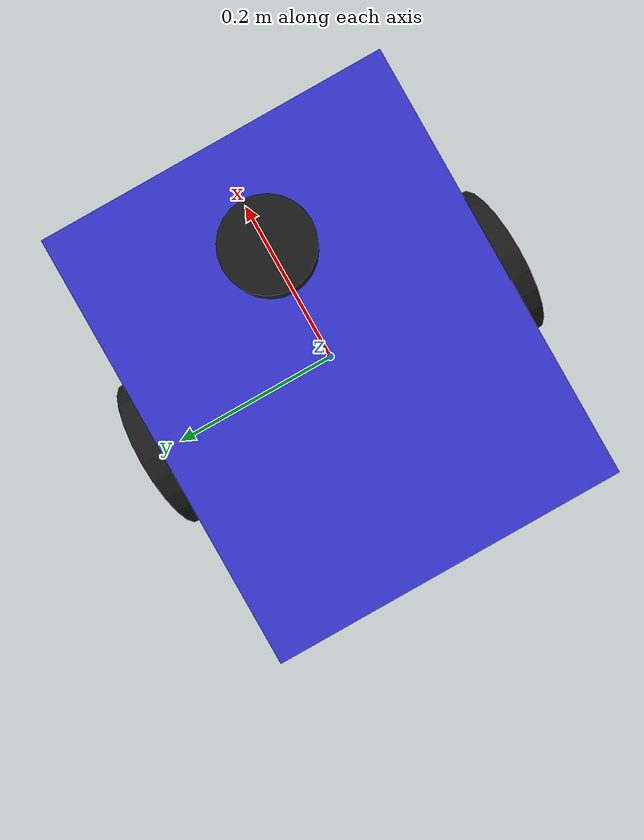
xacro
<?xml version="1.0"?>
<robot xmlns:xacro="http://www.ros.org/wiki/xacro" name="jazzy_bot">

  <!-- ========== PROPERTIES ========== -->
  <xacro:property name="base_width" value="0.4" />
  <xacro:property name="base_length" value="0.5" />
  <xacro:property name="base_height" value="0.2" />
  <xacro:property name="wheel_radius" value="0.1" />
  <xacro:property name="wheel_width" value="0.05" />
  <xacro:property name="wheel_separation" value="0.45" />
  <xacro:property name="caster_radius" value="0.05" />

  <!-- ========== MATERIALS ========== -->
  <material name="blue">
    <color rgba="0.2 0.2 0.8 1.0" />
  </material>

  <material name="black">
    <color rgba="0.1 0.1 0.1 1.0" />
  </material>

  <material name="gray">
    <color rgba="0.5 0.5 0.5 1.0" />
  </material>

  <!-- ========== BASE LINK ========== -->
  <link name="base_link">
  <visual>
    <origin xyz="0 0 0" rpy="0 0 0" />
    <geometry>
      <box size="${base_length} ${base_width} ${base_height}" />
    </geometry>
    <material name="blue" />
  </visual>
  <collision>
    <origin xyz="0 0 0" rpy="0 0 0" />
    <geometry>
      <box size="${base_length} ${base_width} ${base_height}" />
    </geometry>
  </collision>
  <inertial>
    <origin xyz="0 0 0" rpy="0 0 0" />
    <mass value="10.0" />
    <inertia ixx="0.133" ixy="0.0" ixz="0.0" iyy="0.258" iyz="0.0" izz="0.258" />
  </inertial>
  </link>

  <!-- ========== WHEEL MACRO ========== -->
  <xacro:macro name="wheel" params="prefix reflect">
    <link name="${prefix}_wheel">
    <visual>
      <origin xyz="0 0 0" rpy="${pi/2} 0 0" />
      <geometry>
        <cylinder radius="${wheel_radius}" length="${wheel_width}" />
      </geometry>
      <material name="black" />
    </visual>
    <collision>
      <origin xyz="0 0 0" rpy="${pi/2} 0 0" />
      <geometry>
        <cylinder radius="${wheel_radius}" length="${wheel_width}" />
      </geometry>
      <surface>
        <friction>
          <ode>
            <mu>1.0</mu>
            <mu2>1.0</mu2>
            <slip1>0.0</slip1>
            <slip2>0.0</slip2>
          </ode>
        </friction>
      </surface>
    </collision>
    <inertial>
      <origin xyz="0 0 0" rpy="${pi/2} 0 0" />
      <mass value="1.0" />
      <inertia ixx="0.00325" ixy="0.0" ixz="0.0" iyy="0.00325" iyz="0.0" izz="0.005" />
    </inertial>
    </link>

    <joint name="${prefix}_wheel_joint" type="continuous">
      <parent link="base_link" />
      <child link="${prefix}_wheel" />
      <origin xyz="0 ${reflect * wheel_separation/2} ${-base_height/2 + 0.01}" rpy="0 0 0" />
      <axis xyz="0 1 0" />
    </joint>
  </xacro:macro>

  <!-- ========== INSTANTIATE WHEELS ========== -->
  <xacro:wheel prefix="left" reflect="1" />
  <xacro:wheel prefix="right" reflect="-1" />

    <!-- ========== FRONT CASTER WHEEL ========== -->
  <link name="front_caster">
    <visual>
      <origin xyz="0 0 0" rpy="0 0 0" />
      <geometry>
        <sphere radius="${caster_radius}" />
      </geometry>
      <material name="gray" />
    </visual>
    <collision>
      <origin xyz="0 0 0" rpy="0 0 0" />
      <geometry>
        <sphere radius="${caster_radius}" />
      </geometry>
      <surface>
        <friction>
          <ode>
            <mu>0.0</mu>
            <mu2>0.0</mu2>
            <slip1>1.0</slip1>
            <slip2>1.0</slip2>
          </ode>
        </friction>
      </surface>
    </collision>
    <inertial>
      <origin xyz="0 0 0" rpy="0 0 0" />
      <mass value="0.5" />
      <inertia ixx="0.0005" ixy="0.0" ixz="0.0" iyy="0.0005" iyz="0.0" izz="0.0005" />
    </inertial>
  </link>

  <joint name="front_caster_joint" type="fixed">
    <parent link="base_link" />
    <child link="front_caster" />
    <!-- Letakkan di depan: x = + (base_length/2 - offset) -->
    <origin xyz="${base_length/2 - caster_radius} 0 ${-base_height/2 - caster_radius/2}" rpy="0 0 0" />
  </joint>

  <!-- ========== CASTER WHEEL ========== -->
  <link name="caster_wheel">
  <visual>
    <origin xyz="0 0 0" rpy="0 0 0" />
    <geometry>
      <sphere radius="${caster_radius}" />
    </geometry>
    <material name="gray" />
  </visual>
  <collision>
    <origin xyz="0 0 0" rpy="0 0 0" />
    <geometry>
      <sphere radius="${caster_radius}" />
    </geometry>
    <surface>
      <friction>
        <ode>
          <mu>0.0</mu>
          <mu2>0.0</mu2>
          <slip1>1.0</slip1>
          <slip2>1.0</slip2>
        </ode>
      </friction>
    </surface>
  </collision>
  <inertial>
    <origin xyz="0 0 0" rpy="0 0 0" />
    <mass value="0.5" />
    <inertia ixx="0.0005" ixy="0.0" ixz="0.0" iyy="0.0005" iyz="0.0" izz="0.0005" />
  </inertial>
  </link>

  <joint name="caster_wheel_joint" type="fixed">
    <parent link="base_link" />
    <child link="caster_wheel" />
    <origin xyz="${-base_length/2 + caster_radius} 0 ${-base_height/2 - caster_radius/2}" rpy="0 0 0" />
  </joint>

  <!--==========LIDAR SENSOR LINK==========-->
  <link name="lidar_link">
  <visual>
    <origin xyz="0 0 0" rpy="0 0 0" />
    <geometry>
      <cylinder radius="0.05" length="0.04" />
    </geometry>
    <material name="black" />
  </visual>
  <collision>
    <origin xyz="0 0 0" rpy="0 0 0" />
    <geometry>
      <cylinder radius="0.05" length="0.04" />
    </geometry>
  </collision>
  <inertial>
    <origin xyz="0 0 0" rpy="0 0 0" />
    <mass value="0.2" />
    <inertia ixx="0.0001" ixy="0.0" ixz="0.0" iyy="0.0001" iyz="0.0" izz="0.0001" />
  </inertial>
  </link>

  <joint name="lidar_joint" type="fixed">
    <parent link="base_link" />
    <child link="lidar_link" />
    <origin xyz="${base_length/4} 0 ${base_height/2 + 0.02}" rpy="0 0 0" />
  </joint>

  <!-- ========== GAZEBO PLUGINS ========== -->

  <!-- Differential Drive Plugin -->
  <gazebo>
    <plugin filename="libgz-sim-diff-drive-system.so" name="gz::sim::systems::DiffDrive">
      <left_joint>left_wheel_joint</left_joint>
      <right_joint>right_wheel_joint</right_joint>
      <wheel_separation>${wheel_separation}</wheel_separation>
      <wheel_radius>${wheel_radius}</wheel_radius>
      <odom_publish_frequency>30</odom_publish_frequency>
      <max_linear_acceleration>2.0</max_linear_acceleration>
      <min_linear_acceleration>-2.0</min_linear_acceleration>
      <max_angular_acceleration>3.0</max_angular_acceleration>
      <min_angular_acceleration>-3.0</min_angular_acceleration>
      <max_linear_velocity>1.0</max_linear_velocity>
      <min_linear_velocity>-0.5</min_linear_velocity>
      <max_angular_velocity>2.0</max_angular_velocity>
      <min_angular_velocity>-2.0</min_angular_velocity>
    </plugin>
  </gazebo>

  <gazebo>
    <plugin filename="gz-sim-sensors-system" name="gz::sim::systems::Sensors">
      <render_engine>ogre2</render_engine>
    </plugin>
  </gazebo>

  <!-- LiDAR Sensor Plugin (FIXED, ROS2-compatible) -->
  <gazebo reference="lidar_link">
    <sensor name="gpu_lidar" type="gpu_lidar">
      <topic>scan</topic>
      <update_rate>10</update_rate>
      <always_on>true</always_on>
      <visualize>true</visualize>
      <lidar>
        <scan>
          <horizontal>
            <samples>720</samples>
            <resolution>1</resolution>
            <min_angle>-3.14</min_angle>
            <max_angle>3.14</max_angle>
          </horizontal>
        </scan>
        <range>
          <min>0.05</min>
          <max>10.0</max>
          <resolution>0.01</resolution>
        </range>
      </lidar>
      <gz_frame_id>lidar_link</gz_frame_id>
    </sensor>
  </gazebo>

  <!-- ========== GAZEBO MATERIALS ========== -->
  <gazebo reference="base_link">
    <material>Gazebo/Blue</material>
  </gazebo>

  <gazebo reference="left_wheel">
    <material>Gazebo/Black</material>
  </gazebo>

  <gazebo reference="right_wheel">
    <material>Gazebo/Black</material>
  </gazebo>

  <gazebo reference="caster_wheel">
    <material>Gazebo/Grey</material>
  </gazebo>

  <gazebo reference="lidar_link">
    <material>Gazebo/Black</material>
  </gazebo>

</robot>
